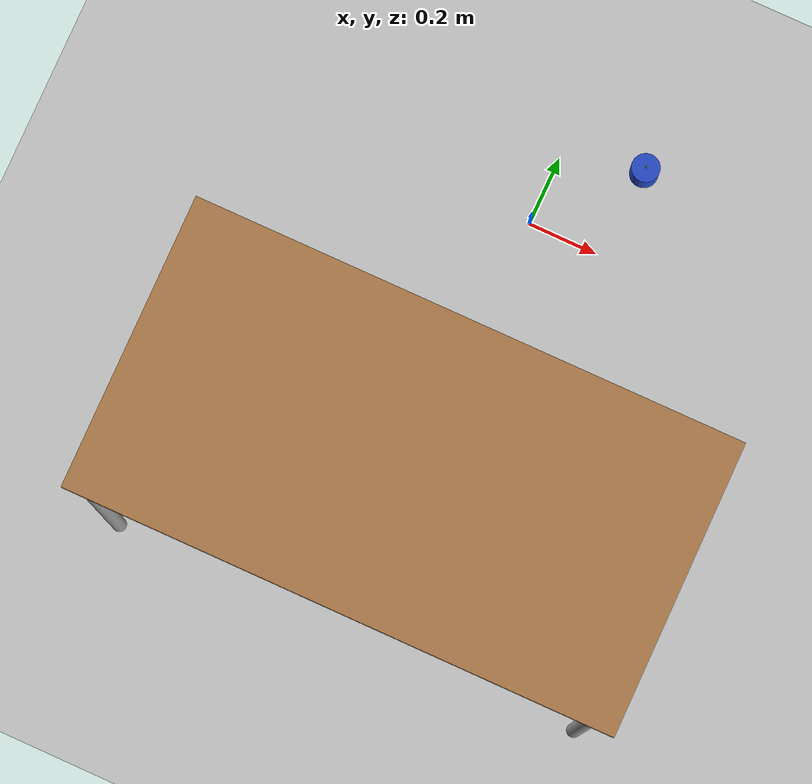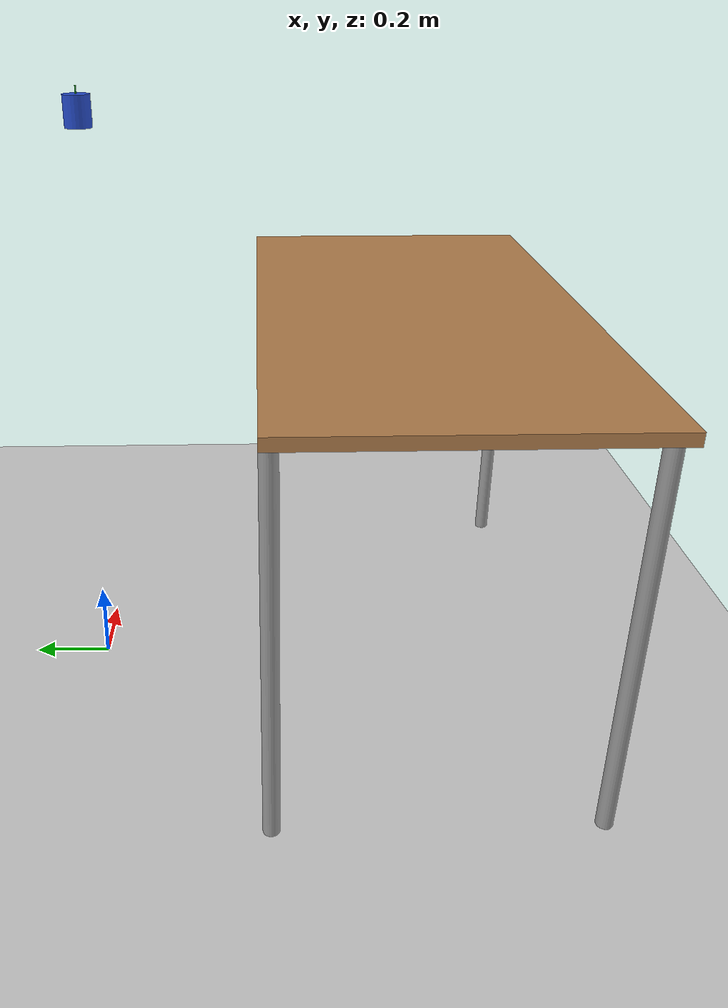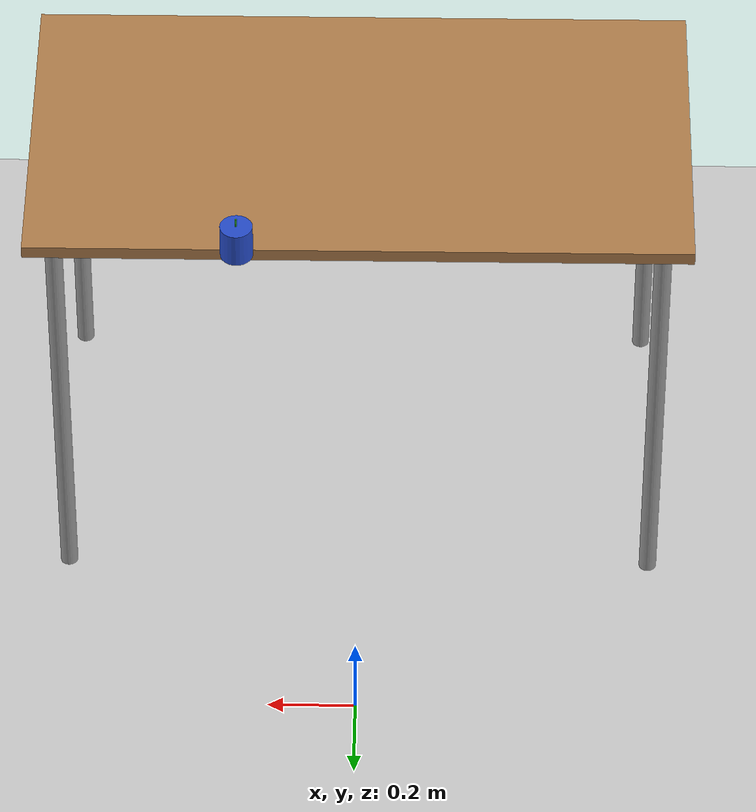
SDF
<?xml version="1.0" ?>
<sdf version="1.4">
  <world name="default">
    <include>
      <uri>model://ground_plane</uri>
    </include>
    <include>
      <uri>model://sun</uri>
    </include>
    <include>
      <uri>model://table</uri>
      <name>table</name>
      <pose>0.0 -0.84 0 0 0 0</pose>
    </include>
    <model name='pepper_plant'>
    <pose> 0.25 0 1.5 0 0 0 </pose>
    <link name='peduncle'>
      <inertial>
        <pose>0 0 0 0 -0 0</pose>
        <mass>0.005</mass>
        <inertia>
          <ixx>0.0001</ixx>
          <ixy>0</ixy>
          <ixz>0</ixz>
          <iyy>0.0001</iyy>
          <iyz>0</iyz>
          <izz>0.0001</izz>
        </inertia>
      </inertial>
      <collision name='peduncle_collision'>
        <pose>0 0 0 0 -0 0</pose>
        <geometry>
          <cylinder>
            <length>0.02</length>
            <radius>0.002</radius>
          </cylinder>
        </geometry>
        <surface>
          <contact>
            <ode/>
          </contact>
          <friction>
            <ode/>
          </friction>
        </surface>
      </collision>
      <visual name='peduncle_visual'>
        <pose>0 0 0 0 -0 0</pose>
        <geometry>
          <cylinder>
            <length>0.02</length>
            <radius>0.002</radius>
          </cylinder>
        </geometry>
        <material>
          <script>
            <name>Gazebo/Green</name>
            <uri>file://media/materials/scripts/gazebo.material</uri>
          </script>
        </material>
      </visual>
    </link>
    <link name='fruit'>
      <inertial>
        <pose>0 0 -0.05 0 -0 0</pose>
        <mass>0.15</mass>
        <inertia>
          <ixx>0.001</ixx>
          <ixy>0</ixy>
          <ixz>0</ixz>
          <iyy>0.001</iyy>
          <iyz>0</iyz>
          <izz>0.001</izz>
        </inertia>
      </inertial>
      <collision name='fruit_collision'>
        <pose>0 0 -0.05 0 -0 0</pose>
        <geometry>
          <cylinder>
            <length>0.08</length>
            <radius>0.035</radius>
          </cylinder>
        </geometry>
        <surface>
          <contact>
            <ode/>
          </contact>
          <friction>
            <ode/>
          </friction>
        </surface>
      </collision>
      <visual name='fruit_visual'>
        <pose>0 0 -0.05 0 -0 0</pose>
        <geometry>
          <cylinder>
            <length>0.08</length>
            <radius>0.035</radius>
          </cylinder>
        </geometry>
        <material>
          <script>
            <name>Gazebo/Blue</name>
            <uri>file://media/materials/scripts/gazebo.material</uri>
          </script>
        </material>
      </visual>
    </link>
    <joint name="breakable" type="revolute">
      <parent>peduncle</parent>
      <child>fruit</child>
      <axis>
        <xyz>0 0 1</xyz>
        <limit>
          <lower>0.0</lower>
          <upper>0.0</upper>
        </limit>
        <use_parent_model_frame>true</use_parent_model_frame>
      </axis>
      <physics>
        <ode>
          <erp>1</erp>
          <cfm>1</cfm>
        </ode>
      </physics>
      <sensor name="force_torque" type="force_torque">
        <always_on>true</always_on>
        <update_rate>1000</update_rate>
        <plugin name="breakable" filename="libBreakableJointPlugin.so">
          <breaking_force_N>10</breaking_force_N>
        </plugin>
      </sensor>
    </joint>
    <joint name="breakable2" type="revolute">
      <parent>world</parent>
      <child>peduncle</child>
      <axis>
        <xyz>0 0 1</xyz>
        <limit>
          <lower>0.0</lower>
          <upper>0.0</upper>
        </limit>
        <use_parent_model_frame>true</use_parent_model_frame>
      </axis>
      <physics>
        <ode>
          <erp>1</erp>
          <cfm>1</cfm>
        </ode>
      </physics>
      <sensor name="force_torque" type="force_torque">
        <always_on>true</always_on>
        <update_rate>1000</update_rate>
        <plugin name="breakable2" filename="libBreakableJointPlugin.so">
          <breaking_force_N>1</breaking_force_N>
        </plugin>
      </sensor>
    </joint>
  </model>
    <physics type="ode" update_rate="100.0">
      <max_step_size>0.001</max_step_size>
      <real_time_factor>1</real_time_factor>
      <real_time_update_rate>1000</real_time_update_rate>
      <gravity>0 0 -9.81</gravity>
    </physics>

  </world>
</sdf>

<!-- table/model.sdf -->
<sdf version="1.5">
  <model name="table">
    <static>true</static>
    <link name="link">
      <collision name="surface">
        <pose>0 0 1.0 0 0 0</pose>
        <geometry>
          <box>
            <size>1.5 0.8 0.03</size>
          </box>
        </geometry>
        <surface>
          <friction>
            <ode>
              <mu>0.6</mu>
              <mu2>0.6</mu2>
            </ode>
          </friction>
        </surface>
      </collision>
      <visual name="visual1">
        <pose>0 0 1.0 0 0 0</pose>
        <geometry>
          <box>
            <size>1.5 0.8 0.03</size>
          </box>
        </geometry>
        <material>
          <script>
            <uri>model://media/materials/scripts/gazebo.material</uri>
            <name>Gazebo/Wood</name>
          </script>
        </material>
      </visual>
      <collision name="front_left_leg">
        <pose>0.68 0.38 0.5 0 0 0</pose>
        <geometry>
          <cylinder>
            <radius>0.02</radius>
            <length>1.0</length>
          </cylinder>
        </geometry>
      </collision>
      <visual name="front_left_leg">
        <pose>0.68 0.38 0.5 0 0 0</pose>
        <geometry>
          <cylinder>
            <radius>0.02</radius>
            <length>1.0</length>
          </cylinder>
        </geometry>
        <material>
          <script>
            <uri>model://media/materials/scripts/gazebo.material</uri>
            <name>Gazebo/Grey</name>
          </script>
        </material>
      </visual>
      <collision name="front_right_leg">
        <pose>0.68 -0.38 0.5 0 0 0</pose>
        <geometry>
          <cylinder>
            <radius>0.02</radius>
            <length>1.0</length>
          </cylinder>
        </geometry>
      </collision>
      <visual name="front_right_leg">
        <pose>0.68 -0.38 0.5 0 0 0</pose>
        <geometry>
          <cylinder>
            <radius>0.02</radius>
            <length>1.0</length>
          </cylinder>
        </geometry>
        <material>
          <script>
            <uri>model://media/materials/scripts/gazebo.material</uri>
            <name>Gazebo/Grey</name>
          </script>
        </material>
      </visual>
      <collision name="back_right_leg">
        <pose>-0.68 -0.38 0.5 0 0 0</pose>
        <geometry>
          <cylinder>
            <radius>0.02</radius>
            <length>1.0</length>
          </cylinder>
        </geometry>
      </collision>
      <visual name="back_right_leg">
        <pose>-0.68 -0.38 0.5 0 0 0</pose>
        <geometry>
          <cylinder>
            <radius>0.02</radius>
            <length>1.0</length>
          </cylinder>
        </geometry>
        <material>
          <script>
            <uri>model://media/materials/scripts/gazebo.material</uri>
            <name>Gazebo/Grey</name>
          </script>
        </material>
      </visual>
      <collision name="back_left_leg">
        <pose>-0.68 0.38 0.5 0 0 0</pose>
        <geometry>
          <cylinder>
            <radius>0.02</radius>
            <length>1.0</length>
          </cylinder>
        </geometry>
      </collision>
      <visual name="back_left_leg">
        <pose>-0.68 0.38 0.5 0 0 0</pose>
        <geometry>
          <cylinder>
            <radius>0.02</radius>
            <length>1.0</length>
          </cylinder>
        </geometry>
        <material>
          <script>
            <uri>model://media/materials/scripts/gazebo.material</uri>
            <name>Gazebo/Grey</name>
          </script>
        </material>
      </visual>
    </link>
  </model>
</sdf>
